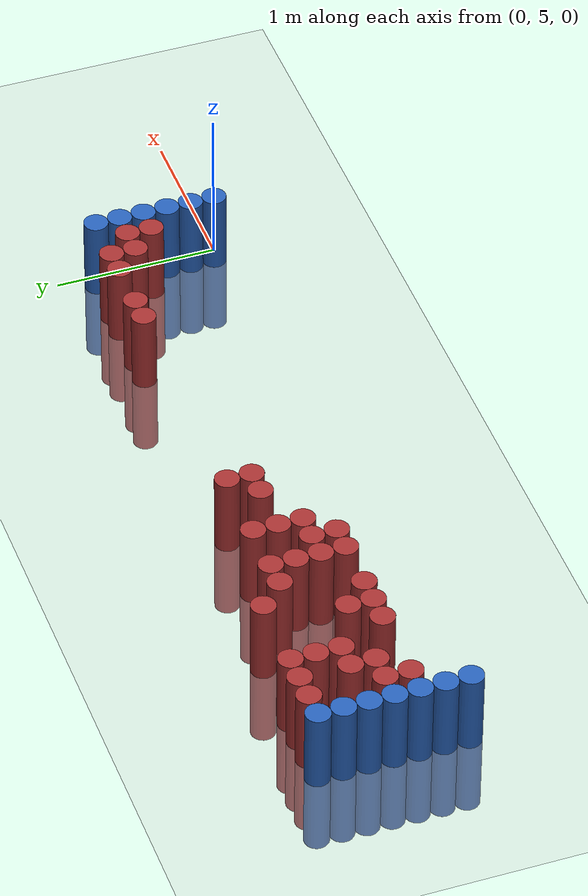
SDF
<sdf version="1.6">
 <world name="default">
  <model name="ground_plane">
   <static>1</static>
   <link name="link">
    <collision name="collision">
     <geometry><plane><normal>0 0 1</normal><size>100 100</size></plane></geometry>
     <surface><friction><ode><mu>100</mu><mu2>50</mu2></ode></friction></surface>
    </collision>
    <visual name="visual">
     <cast_shadows>0</cast_shadows>
     <geometry><plane><normal>0 0 1</normal><size>100 100</size></plane></geometry>
     <material>
      <script><uri>file://media/materials/scripts/gazebo.material</uri><name>Gazebo/Grey</name></script>
     </material>
    </visual>
   </link>
  </model>
  <model name="unit_cylinder_94">
   <static>1</static>
   <pose>-0.075000 5.025000 0.000000 0.000000 0.000000 0.000000</pose>
   <link name="link">
    <inertial>
     <mass>1</mass>
     <inertia><ixx>0.145833</ixx><ixy>0</ixy><ixz>0</ixz><iyy>0.145833</iyy><iyz>0</iyz><izz>0.125</izz></inertia>
    </inertial>
    <collision name="collision">
     <geometry><cylinder><radius>0.075000</radius><length>1</length></cylinder></geometry>
    </collision>
    <visual name="visual">
     <geometry><cylinder><radius>0.075000</radius><length>1</length></cylinder></geometry>
     <material>
      <ambient>0.152000 0.379000 0.720000 1</ambient>
      <diffuse>0.152000 0.379000 0.720000 1</diffuse>
     </material>
     <material>
      <script><name>Gazebo/Grey</name><uri>file://media/materials/scripts/gazebo.material</uri></script>
     </material>
    </visual>
   </link>
  </model>
  <model name="unit_cylinder_95">
   <static>1</static>
   <pose>-4.425000 5.025000 0.000000 0.000000 0.000000 0.000000</pose>
   <link name="link">
    <inertial>
     <mass>1</mass>
     <inertia><ixx>0.145833</ixx><ixy>0</ixy><ixz>0</ixz><iyy>0.145833</iyy><iyz>0</iyz><izz>0.125</izz></inertia>
    </inertial>
    <collision name="collision">
     <geometry><cylinder><radius>0.075000</radius><length>1</length></cylinder></geometry>
    </collision>
    <visual name="visual">
     <geometry><cylinder><radius>0.075000</radius><length>1</length></cylinder></geometry>
     <material>
      <ambient>0.152000 0.379000 0.720000 1</ambient>
      <diffuse>0.152000 0.379000 0.720000 1</diffuse>
     </material>
     <material>
      <script><name>Gazebo/Grey</name><uri>file://media/materials/scripts/gazebo.material</uri></script>
     </material>
    </visual>
   </link>
  </model>
  <model name="unit_cylinder_96">
   <static>1</static>
   <pose>-4.425000 5.175000 0.000000 0.000000 0.000000 0.000000</pose>
   <link name="link">
    <inertial>
     <mass>1</mass>
     <inertia><ixx>0.145833</ixx><ixy>0</ixy><ixz>0</ixz><iyy>0.145833</iyy><iyz>0</iyz><izz>0.125</izz></inertia>
    </inertial>
    <collision name="collision">
     <geometry><cylinder><radius>0.075000</radius><length>1</length></cylinder></geometry>
    </collision>
    <visual name="visual">
     <geometry><cylinder><radius>0.075000</radius><length>1</length></cylinder></geometry>
     <material>
      <ambient>0.152000 0.379000 0.720000 1</ambient>
      <diffuse>0.152000 0.379000 0.720000 1</diffuse>
     </material>
     <material>
      <script><name>Gazebo/Grey</name><uri>file://media/materials/scripts/gazebo.material</uri></script>
     </material>
    </visual>
   </link>
  </model>
  <model name="unit_cylinder_97">
   <static>1</static>
   <pose>-4.425000 5.325000 0.000000 0.000000 0.000000 0.000000</pose>
   <link name="link">
    <inertial>
     <mass>1</mass>
     <inertia><ixx>0.145833</ixx><ixy>0</ixy><ixz>0</ixz><iyy>0.145833</iyy><iyz>0</iyz><izz>0.125</izz></inertia>
    </inertial>
    <collision name="collision">
     <geometry><cylinder><radius>0.075000</radius><length>1</length></cylinder></geometry>
    </collision>
    <visual name="visual">
     <geometry><cylinder><radius>0.075000</radius><length>1</length></cylinder></geometry>
     <material>
      <ambient>0.152000 0.379000 0.720000 1</ambient>
      <diffuse>0.152000 0.379000 0.720000 1</diffuse>
     </material>
     <material>
      <script><name>Gazebo/Grey</name><uri>file://media/materials/scripts/gazebo.material</uri></script>
     </material>
    </visual>
   </link>
  </model>
  <model name="unit_cylinder_98">
   <static>1</static>
   <pose>-4.425000 5.475000 0.000000 0.000000 0.000000 0.000000</pose>
   <link name="link">
    <inertial>
     <mass>1</mass>
     <inertia><ixx>0.145833</ixx><ixy>0</ixy><ixz>0</ixz><iyy>0.145833</iyy><iyz>0</iyz><izz>0.125</izz></inertia>
    </inertial>
    <collision name="collision">
     <geometry><cylinder><radius>0.075000</radius><length>1</length></cylinder></geometry>
    </collision>
    <visual name="visual">
     <geometry><cylinder><radius>0.075000</radius><length>1</length></cylinder></geometry>
     <material>
      <ambient>0.152000 0.379000 0.720000 1</ambient>
      <diffuse>0.152000 0.379000 0.720000 1</diffuse>
     </material>
     <material>
      <script><name>Gazebo/Grey</name><uri>file://media/materials/scripts/gazebo.material</uri></script>
     </material>
    </visual>
   </link>
  </model>
  <model name="unit_cylinder_99">
   <static>1</static>
   <pose>-4.425000 5.625000 0.000000 0.000000 0.000000 0.000000</pose>
   <link name="link">
    <inertial>
     <mass>1</mass>
     <inertia><ixx>0.145833</ixx><ixy>0</ixy><ixz>0</ixz><iyy>0.145833</iyy><iyz>0</iyz><izz>0.125</izz></inertia>
    </inertial>
    <collision name="collision">
     <geometry><cylinder><radius>0.075000</radius><length>1</length></cylinder></geometry>
    </collision>
    <visual name="visual">
     <geometry><cylinder><radius>0.075000</radius><length>1</length></cylinder></geometry>
     <material>
      <ambient>0.152000 0.379000 0.720000 1</ambient>
      <diffuse>0.152000 0.379000 0.720000 1</diffuse>
     </material>
     <material>
      <script><name>Gazebo/Grey</name><uri>file://media/materials/scripts/gazebo.material</uri></script>
     </material>
    </visual>
   </link>
  </model>
  <model name="unit_cylinder_100">
   <static>1</static>
   <pose>-4.425000 5.775000 0.000000 0.000000 0.000000 0.000000</pose>
   <link name="link">
    <inertial>
     <mass>1</mass>
     <inertia><ixx>0.145833</ixx><ixy>0</ixy><ixz>0</ixz><iyy>0.145833</iyy><iyz>0</iyz><izz>0.125</izz></inertia>
    </inertial>
    <collision name="collision">
     <geometry><cylinder><radius>0.075000</radius><length>1</length></cylinder></geometry>
    </collision>
    <visual name="visual">
     <geometry><cylinder><radius>0.075000</radius><length>1</length></cylinder></geometry>
     <material>
      <ambient>0.152000 0.379000 0.720000 1</ambient>
      <diffuse>0.152000 0.379000 0.720000 1</diffuse>
     </material>
     <material>
      <script><name>Gazebo/Grey</name><uri>file://media/materials/scripts/gazebo.material</uri></script>
     </material>
    </visual>
   </link>
  </model>
  <model name="unit_cylinder_101">
   <static>1</static>
   <pose>-4.425000 5.925000 0.000000 0.000000 0.000000 0.000000</pose>
   <link name="link">
    <inertial>
     <mass>1</mass>
     <inertia><ixx>0.145833</ixx><ixy>0</ixy><ixz>0</ixz><iyy>0.145833</iyy><iyz>0</iyz><izz>0.125</izz></inertia>
    </inertial>
    <collision name="collision">
     <geometry><cylinder><radius>0.075000</radius><length>1</length></cylinder></geometry>
    </collision>
    <visual name="visual">
     <geometry><cylinder><radius>0.075000</radius><length>1</length></cylinder></geometry>
     <material>
      <ambient>0.152000 0.379000 0.720000 1</ambient>
      <diffuse>0.152000 0.379000 0.720000 1</diffuse>
     </material>
     <material>
      <script><name>Gazebo/Grey</name><uri>file://media/materials/scripts/gazebo.material</uri></script>
     </material>
    </visual>
   </link>
  </model>
  <model name="unit_cylinder_126">
   <static>1</static>
   <pose>-4.275000 5.325000 0.000000 0.000000 0.000000 0.000000</pose>
   <link name="link">
    <inertial>
     <mass>1</mass>
     <inertia><ixx>0.145833</ixx><ixy>0</ixy><ixz>0</ixz><iyy>0.145833</iyy><iyz>0</iyz><izz>0.125</izz></inertia>
    </inertial>
    <collision name="collision">
     <geometry><cylinder><radius>0.075000</radius><length>1</length></cylinder></geometry>
    </collision>
    <visual name="visual">
     <geometry><cylinder><radius>0.075000</radius><length>1</length></cylinder></geometry>
     <material>
      <ambient>0.648000 0.192000 0.192000 1</ambient>
      <diffuse>0.648000 0.192000 0.192000 1</diffuse>
     </material>
     <material>
      <script><name>Gazebo/Grey</name><uri>file://media/materials/scripts/gazebo.material</uri></script>
     </material>
    </visual>
   </link>
  </model>
  <model name="unit_cylinder_127">
   <static>1</static>
   <pose>-4.275000 5.475000 0.000000 0.000000 0.000000 0.000000</pose>
   <link name="link">
    <inertial>
     <mass>1</mass>
     <inertia><ixx>0.145833</ixx><ixy>0</ixy><ixz>0</ixz><iyy>0.145833</iyy><iyz>0</iyz><izz>0.125</izz></inertia>
    </inertial>
    <collision name="collision">
     <geometry><cylinder><radius>0.075000</radius><length>1</length></cylinder></geometry>
    </collision>
    <visual name="visual">
     <geometry><cylinder><radius>0.075000</radius><length>1</length></cylinder></geometry>
     <material>
      <ambient>0.648000 0.192000 0.192000 1</ambient>
      <diffuse>0.648000 0.192000 0.192000 1</diffuse>
     </material>
     <material>
      <script><name>Gazebo/Grey</name><uri>file://media/materials/scripts/gazebo.material</uri></script>
     </material>
    </visual>
   </link>
  </model>
  <model name="unit_cylinder_128">
   <static>1</static>
   <pose>-4.275000 5.925000 0.000000 0.000000 0.000000 0.000000</pose>
   <link name="link">
    <inertial>
     <mass>1</mass>
     <inertia><ixx>0.145833</ixx><ixy>0</ixy><ixz>0</ixz><iyy>0.145833</iyy><iyz>0</iyz><izz>0.125</izz></inertia>
    </inertial>
    <collision name="collision">
     <geometry><cylinder><radius>0.075000</radius><length>1</length></cylinder></geometry>
    </collision>
    <visual name="visual">
     <geometry><cylinder><radius>0.075000</radius><length>1</length></cylinder></geometry>
     <material>
      <ambient>0.648000 0.192000 0.192000 1</ambient>
      <diffuse>0.648000 0.192000 0.192000 1</diffuse>
     </material>
     <material>
      <script><name>Gazebo/Grey</name><uri>file://media/materials/scripts/gazebo.material</uri></script>
     </material>
    </visual>
   </link>
  </model>
  <model name="unit_cylinder_145">
   <static>1</static>
   <pose>-4.125000 5.475000 0.000000 0.000000 0.000000 0.000000</pose>
   <link name="link">
    <inertial>
     <mass>1</mass>
     <inertia><ixx>0.145833</ixx><ixy>0</ixy><ixz>0</ixz><iyy>0.145833</iyy><iyz>0</iyz><izz>0.125</izz></inertia>
    </inertial>
    <collision name="collision">
     <geometry><cylinder><radius>0.075000</radius><length>1</length></cylinder></geometry>
    </collision>
    <visual name="visual">
     <geometry><cylinder><radius>0.075000</radius><length>1</length></cylinder></geometry>
     <material>
      <ambient>0.648000 0.192000 0.192000 1</ambient>
      <diffuse>0.648000 0.192000 0.192000 1</diffuse>
     </material>
     <material>
      <script><name>Gazebo/Grey</name><uri>file://media/materials/scripts/gazebo.material</uri></script>
     </material>
    </visual>
   </link>
  </model>
  <model name="unit_cylinder_146">
   <static>1</static>
   <pose>-4.125000 5.625000 0.000000 0.000000 0.000000 0.000000</pose>
   <link name="link">
    <inertial>
     <mass>1</mass>
     <inertia><ixx>0.145833</ixx><ixy>0</ixy><ixz>0</ixz><iyy>0.145833</iyy><iyz>0</iyz><izz>0.125</izz></inertia>
    </inertial>
    <collision name="collision">
     <geometry><cylinder><radius>0.075000</radius><length>1</length></cylinder></geometry>
    </collision>
    <visual name="visual">
     <geometry><cylinder><radius>0.075000</radius><length>1</length></cylinder></geometry>
     <material>
      <ambient>0.648000 0.192000 0.192000 1</ambient>
      <diffuse>0.648000 0.192000 0.192000 1</diffuse>
     </material>
     <material>
      <script><name>Gazebo/Grey</name><uri>file://media/materials/scripts/gazebo.material</uri></script>
     </material>
    </visual>
   </link>
  </model>
  <model name="unit_cylinder_147">
   <static>1</static>
   <pose>-4.125000 5.925000 0.000000 0.000000 0.000000 0.000000</pose>
   <link name="link">
    <inertial>
     <mass>1</mass>
     <inertia><ixx>0.145833</ixx><ixy>0</ixy><ixz>0</ixz><iyy>0.145833</iyy><iyz>0</iyz><izz>0.125</izz></inertia>
    </inertial>
    <collision name="collision">
     <geometry><cylinder><radius>0.075000</radius><length>1</length></cylinder></geometry>
    </collision>
    <visual name="visual">
     <geometry><cylinder><radius>0.075000</radius><length>1</length></cylinder></geometry>
     <material>
      <ambient>0.648000 0.192000 0.192000 1</ambient>
      <diffuse>0.648000 0.192000 0.192000 1</diffuse>
     </material>
     <material>
      <script><name>Gazebo/Grey</name><uri>file://media/materials/scripts/gazebo.material</uri></script>
     </material>
    </visual>
   </link>
  </model>
  <model name="unit_cylinder_159">
   <static>1</static>
   <pose>-3.975000 5.625000 0.000000 0.000000 0.000000 0.000000</pose>
   <link name="link">
    <inertial>
     <mass>1</mass>
     <inertia><ixx>0.145833</ixx><ixy>0</ixy><ixz>0</ixz><iyy>0.145833</iyy><iyz>0</iyz><izz>0.125</izz></inertia>
    </inertial>
    <collision name="collision">
     <geometry><cylinder><radius>0.075000</radius><length>1</length></cylinder></geometry>
    </collision>
    <visual name="visual">
     <geometry><cylinder><radius>0.075000</radius><length>1</length></cylinder></geometry>
     <material>
      <ambient>0.648000 0.192000 0.192000 1</ambient>
      <diffuse>0.648000 0.192000 0.192000 1</diffuse>
     </material>
     <material>
      <script><name>Gazebo/Grey</name><uri>file://media/materials/scripts/gazebo.material</uri></script>
     </material>
    </visual>
   </link>
  </model>
  <model name="unit_cylinder_160">
   <static>1</static>
   <pose>-3.975000 5.775000 0.000000 0.000000 0.000000 0.000000</pose>
   <link name="link">
    <inertial>
     <mass>1</mass>
     <inertia><ixx>0.145833</ixx><ixy>0</ixy><ixz>0</ixz><iyy>0.145833</iyy><iyz>0</iyz><izz>0.125</izz></inertia>
    </inertial>
    <collision name="collision">
     <geometry><cylinder><radius>0.075000</radius><length>1</length></cylinder></geometry>
    </collision>
    <visual name="visual">
     <geometry><cylinder><radius>0.075000</radius><length>1</length></cylinder></geometry>
     <material>
      <ambient>0.648000 0.192000 0.192000 1</ambient>
      <diffuse>0.648000 0.192000 0.192000 1</diffuse>
     </material>
     <material>
      <script><name>Gazebo/Grey</name><uri>file://media/materials/scripts/gazebo.material</uri></script>
     </material>
    </visual>
   </link>
  </model>
  <model name="unit_cylinder_161">
   <static>1</static>
   <pose>-3.975000 5.925000 0.000000 0.000000 0.000000 0.000000</pose>
   <link name="link">
    <inertial>
     <mass>1</mass>
     <inertia><ixx>0.145833</ixx><ixy>0</ixy><ixz>0</ixz><iyy>0.145833</iyy><iyz>0</iyz><izz>0.125</izz></inertia>
    </inertial>
    <collision name="collision">
     <geometry><cylinder><radius>0.075000</radius><length>1</length></cylinder></geometry>
    </collision>
    <visual name="visual">
     <geometry><cylinder><radius>0.075000</radius><length>1</length></cylinder></geometry>
     <material>
      <ambient>0.648000 0.192000 0.192000 1</ambient>
      <diffuse>0.648000 0.192000 0.192000 1</diffuse>
     </material>
     <material>
      <script><name>Gazebo/Grey</name><uri>file://media/materials/scripts/gazebo.material</uri></script>
     </material>
    </visual>
   </link>
  </model>
  <model name="unit_cylinder_165">
   <static>1</static>
   <pose>-3.825000 5.325000 0.000000 0.000000 0.000000 0.000000</pose>
   <link name="link">
    <inertial>
     <mass>1</mass>
     <inertia><ixx>0.145833</ixx><ixy>0</ixy><ixz>0</ixz><iyy>0.145833</iyy><iyz>0</iyz><izz>0.125</izz></inertia>
    </inertial>
    <collision name="collision">
     <geometry><cylinder><radius>0.075000</radius><length>1</length></cylinder></geometry>
    </collision>
    <visual name="visual">
     <geometry><cylinder><radius>0.075000</radius><length>1</length></cylinder></geometry>
     <material>
      <ambient>0.648000 0.192000 0.192000 1</ambient>
      <diffuse>0.648000 0.192000 0.192000 1</diffuse>
     </material>
     <material>
      <script><name>Gazebo/Grey</name><uri>file://media/materials/scripts/gazebo.material</uri></script>
     </material>
    </visual>
   </link>
  </model>
  <model name="unit_cylinder_170">
   <static>1</static>
   <pose>-3.675000 5.325000 0.000000 0.000000 0.000000 0.000000</pose>
   <link name="link">
    <inertial>
     <mass>1</mass>
     <inertia><ixx>0.145833</ixx><ixy>0</ixy><ixz>0</ixz><iyy>0.145833</iyy><iyz>0</iyz><izz>0.125</izz></inertia>
    </inertial>
    <collision name="collision">
     <geometry><cylinder><radius>0.075000</radius><length>1</length></cylinder></geometry>
    </collision>
    <visual name="visual">
     <geometry><cylinder><radius>0.075000</radius><length>1</length></cylinder></geometry>
     <material>
      <ambient>0.648000 0.192000 0.192000 1</ambient>
      <diffuse>0.648000 0.192000 0.192000 1</diffuse>
     </material>
     <material>
      <script><name>Gazebo/Grey</name><uri>file://media/materials/scripts/gazebo.material</uri></script>
     </material>
    </visual>
   </link>
  </model>
  <model name="unit_cylinder_171">
   <static>1</static>
   <pose>-3.675000 5.475000 0.000000 0.000000 0.000000 0.000000</pose>
   <link name="link">
    <inertial>
     <mass>1</mass>
     <inertia><ixx>0.145833</ixx><ixy>0</ixy><ixz>0</ixz><iyy>0.145833</iyy><iyz>0</iyz><izz>0.125</izz></inertia>
    </inertial>
    <collision name="collision">
     <geometry><cylinder><radius>0.075000</radius><length>1</length></cylinder></geometry>
    </collision>
    <visual name="visual">
     <geometry><cylinder><radius>0.075000</radius><length>1</length></cylinder></geometry>
     <material>
      <ambient>0.648000 0.192000 0.192000 1</ambient>
      <diffuse>0.648000 0.192000 0.192000 1</diffuse>
     </material>
     <material>
      <script><name>Gazebo/Grey</name><uri>file://media/materials/scripts/gazebo.material</uri></script>
     </material>
    </visual>
   </link>
  </model>
  <model name="unit_cylinder_176">
   <static>1</static>
   <pose>-3.525000 5.325000 0.000000 0.000000 0.000000 0.000000</pose>
   <link name="link">
    <inertial>
     <mass>1</mass>
     <inertia><ixx>0.145833</ixx><ixy>0</ixy><ixz>0</ixz><iyy>0.145833</iyy><iyz>0</iyz><izz>0.125</izz></inertia>
    </inertial>
    <collision name="collision">
     <geometry><cylinder><radius>0.075000</radius><length>1</length></cylinder></geometry>
    </collision>
    <visual name="visual">
     <geometry><cylinder><radius>0.075000</radius><length>1</length></cylinder></geometry>
     <material>
      <ambient>0.648000 0.192000 0.192000 1</ambient>
      <diffuse>0.648000 0.192000 0.192000 1</diffuse>
     </material>
     <material>
      <script><name>Gazebo/Grey</name><uri>file://media/materials/scripts/gazebo.material</uri></script>
     </material>
    </visual>
   </link>
  </model>
  <model name="unit_cylinder_177">
   <static>1</static>
   <pose>-3.525000 5.925000 0.000000 0.000000 0.000000 0.000000</pose>
   <link name="link">
    <inertial>
     <mass>1</mass>
     <inertia><ixx>0.145833</ixx><ixy>0</ixy><ixz>0</ixz><iyy>0.145833</iyy><iyz>0</iyz><izz>0.125</izz></inertia>
    </inertial>
    <collision name="collision">
     <geometry><cylinder><radius>0.075000</radius><length>1</length></cylinder></geometry>
    </collision>
    <visual name="visual">
     <geometry><cylinder><radius>0.075000</radius><length>1</length></cylinder></geometry>
     <material>
      <ambient>0.648000 0.192000 0.192000 1</ambient>
      <diffuse>0.648000 0.192000 0.192000 1</diffuse>
     </material>
     <material>
      <script><name>Gazebo/Grey</name><uri>file://media/materials/scripts/gazebo.material</uri></script>
     </material>
    </visual>
   </link>
  </model>
  <model name="unit_cylinder_182">
   <static>1</static>
   <pose>-3.375000 5.775000 0.000000 0.000000 0.000000 0.000000</pose>
   <link name="link">
    <inertial>
     <mass>1</mass>
     <inertia><ixx>0.145833</ixx><ixy>0</ixy><ixz>0</ixz><iyy>0.145833</iyy><iyz>0</iyz><izz>0.125</izz></inertia>
    </inertial>
    <collision name="collision">
     <geometry><cylinder><radius>0.075000</radius><length>1</length></cylinder></geometry>
    </collision>
    <visual name="visual">
     <geometry><cylinder><radius>0.075000</radius><length>1</length></cylinder></geometry>
     <material>
      <ambient>0.648000 0.192000 0.192000 1</ambient>
      <diffuse>0.648000 0.192000 0.192000 1</diffuse>
     </material>
     <material>
      <script><name>Gazebo/Grey</name><uri>file://media/materials/scripts/gazebo.material</uri></script>
     </material>
    </visual>
   </link>
  </model>
  <model name="unit_cylinder_186">
   <static>1</static>
   <pose>-3.225000 5.325000 0.000000 0.000000 0.000000 0.000000</pose>
   <link name="link">
    <inertial>
     <mass>1</mass>
     <inertia><ixx>0.145833</ixx><ixy>0</ixy><ixz>0</ixz><iyy>0.145833</iyy><iyz>0</iyz><izz>0.125</izz></inertia>
    </inertial>
    <collision name="collision">
     <geometry><cylinder><radius>0.075000</radius><length>1</length></cylinder></geometry>
    </collision>
    <visual name="visual">
     <geometry><cylinder><radius>0.075000</radius><length>1</length></cylinder></geometry>
     <material>
      <ambient>0.648000 0.192000 0.192000 1</ambient>
      <diffuse>0.648000 0.192000 0.192000 1</diffuse>
     </material>
     <material>
      <script><name>Gazebo/Grey</name><uri>file://media/materials/scripts/gazebo.material</uri></script>
     </material>
    </visual>
   </link>
  </model>
  <model name="unit_cylinder_187">
   <static>1</static>
   <pose>-3.225000 5.475000 0.000000 0.000000 0.000000 0.000000</pose>
   <link name="link">
    <inertial>
     <mass>1</mass>
     <inertia><ixx>0.145833</ixx><ixy>0</ixy><ixz>0</ixz><iyy>0.145833</iyy><iyz>0</iyz><izz>0.125</izz></inertia>
    </inertial>
    <collision name="collision">
     <geometry><cylinder><radius>0.075000</radius><length>1</length></cylinder></geometry>
    </collision>
    <visual name="visual">
     <geometry><cylinder><radius>0.075000</radius><length>1</length></cylinder></geometry>
     <material>
      <ambient>0.648000 0.192000 0.192000 1</ambient>
      <diffuse>0.648000 0.192000 0.192000 1</diffuse>
     </material>
     <material>
      <script><name>Gazebo/Grey</name><uri>file://media/materials/scripts/gazebo.material</uri></script>
     </material>
    </visual>
   </link>
  </model>
  <model name="unit_cylinder_188">
   <static>1</static>
   <pose>-3.225000 5.625000 0.000000 0.000000 0.000000 0.000000</pose>
   <link name="link">
    <inertial>
     <mass>1</mass>
     <inertia><ixx>0.145833</ixx><ixy>0</ixy><ixz>0</ixz><iyy>0.145833</iyy><iyz>0</iyz><izz>0.125</izz></inertia>
    </inertial>
    <collision name="collision">
     <geometry><cylinder><radius>0.075000</radius><length>1</length></cylinder></geometry>
    </collision>
    <visual name="visual">
     <geometry><cylinder><radius>0.075000</radius><length>1</length></cylinder></geometry>
     <material>
      <ambient>0.648000 0.192000 0.192000 1</ambient>
      <diffuse>0.648000 0.192000 0.192000 1</diffuse>
     </material>
     <material>
      <script><name>Gazebo/Grey</name><uri>file://media/materials/scripts/gazebo.material</uri></script>
     </material>
    </visual>
   </link>
  </model>
  <model name="unit_cylinder_189">
   <static>1</static>
   <pose>-3.225000 5.775000 0.000000 0.000000 0.000000 0.000000</pose>
   <link name="link">
    <inertial>
     <mass>1</mass>
     <inertia><ixx>0.145833</ixx><ixy>0</ixy><ixz>0</ixz><iyy>0.145833</iyy><iyz>0</iyz><izz>0.125</izz></inertia>
    </inertial>
    <collision name="collision">
     <geometry><cylinder><radius>0.075000</radius><length>1</length></cylinder></geometry>
    </collision>
    <visual name="visual">
     <geometry><cylinder><radius>0.075000</radius><length>1</length></cylinder></geometry>
     <material>
      <ambient>0.648000 0.192000 0.192000 1</ambient>
      <diffuse>0.648000 0.192000 0.192000 1</diffuse>
     </material>
     <material>
      <script><name>Gazebo/Grey</name><uri>file://media/materials/scripts/gazebo.material</uri></script>
     </material>
    </visual>
   </link>
  </model>
  <model name="unit_cylinder_193">
   <static>1</static>
   <pose>-3.075000 5.325000 0.000000 0.000000 0.000000 0.000000</pose>
   <link name="link">
    <inertial>
     <mass>1</mass>
     <inertia><ixx>0.145833</ixx><ixy>0</ixy><ixz>0</ixz><iyy>0.145833</iyy><iyz>0</iyz><izz>0.125</izz></inertia>
    </inertial>
    <collision name="collision">
     <geometry><cylinder><radius>0.075000</radius><length>1</length></cylinder></geometry>
    </collision>
    <visual name="visual">
     <geometry><cylinder><radius>0.075000</radius><length>1</length></cylinder></geometry>
     <material>
      <ambient>0.648000 0.192000 0.192000 1</ambient>
      <diffuse>0.648000 0.192000 0.192000 1</diffuse>
     </material>
     <material>
      <script><name>Gazebo/Grey</name><uri>file://media/materials/scripts/gazebo.material</uri></script>
     </material>
    </visual>
   </link>
  </model>
  <model name="unit_cylinder_194">
   <static>1</static>
   <pose>-3.075000 5.475000 0.000000 0.000000 0.000000 0.000000</pose>
   <link name="link">
    <inertial>
     <mass>1</mass>
     <inertia><ixx>0.145833</ixx><ixy>0</ixy><ixz>0</ixz><iyy>0.145833</iyy><iyz>0</iyz><izz>0.125</izz></inertia>
    </inertial>
    <collision name="collision">
     <geometry><cylinder><radius>0.075000</radius><length>1</length></cylinder></geometry>
    </collision>
    <visual name="visual">
     <geometry><cylinder><radius>0.075000</radius><length>1</length></cylinder></geometry>
     <material>
      <ambient>0.648000 0.192000 0.192000 1</ambient>
      <diffuse>0.648000 0.192000 0.192000 1</diffuse>
     </material>
     <material>
      <script><name>Gazebo/Grey</name><uri>file://media/materials/scripts/gazebo.material</uri></script>
     </material>
    </visual>
   </link>
  </model>
  <model name="unit_cylinder_198">
   <static>1</static>
   <pose>-2.925000 5.475000 0.000000 0.000000 0.000000 0.000000</pose>
   <link name="link">
    <inertial>
     <mass>1</mass>
     <inertia><ixx>0.145833</ixx><ixy>0</ixy><ixz>0</ixz><iyy>0.145833</iyy><iyz>0</iyz><izz>0.125</izz></inertia>
    </inertial>
    <collision name="collision">
     <geometry><cylinder><radius>0.075000</radius><length>1</length></cylinder></geometry>
    </collision>
    <visual name="visual">
     <geometry><cylinder><radius>0.075000</radius><length>1</length></cylinder></geometry>
     <material>
      <ambient>0.648000 0.192000 0.192000 1</ambient>
      <diffuse>0.648000 0.192000 0.192000 1</diffuse>
     </material>
     <material>
      <script><name>Gazebo/Grey</name><uri>file://media/materials/scripts/gazebo.material</uri></script>
     </material>
    </visual>
   </link>
  </model>
  <model name="unit_cylinder_199">
   <static>1</static>
   <pose>-2.925000 5.625000 0.000000 0.000000 0.000000 0.000000</pose>
   <link name="link">
    <inertial>
     <mass>1</mass>
     <inertia><ixx>0.145833</ixx><ixy>0</ixy><ixz>0</ixz><iyy>0.145833</iyy><iyz>0</iyz><izz>0.125</izz></inertia>
    </inertial>
    <collision name="collision">
     <geometry><cylinder><radius>0.075000</radius><length>1</length></cylinder></geometry>
    </collision>
    <visual name="visual">
     <geometry><cylinder><radius>0.075000</radius><length>1</length></cylinder></geometry>
     <material>
      <ambient>0.648000 0.192000 0.192000 1</ambient>
      <diffuse>0.648000 0.192000 0.192000 1</diffuse>
     </material>
     <material>
      <script><name>Gazebo/Grey</name><uri>file://media/materials/scripts/gazebo.material</uri></script>
     </material>
    </visual>
   </link>
  </model>
  <model name="unit_cylinder_200">
   <static>1</static>
   <pose>-2.925000 5.775000 0.000000 0.000000 0.000000 0.000000</pose>
   <link name="link">
    <inertial>
     <mass>1</mass>
     <inertia><ixx>0.145833</ixx><ixy>0</ixy><ixz>0</ixz><iyy>0.145833</iyy><iyz>0</iyz><izz>0.125</izz></inertia>
    </inertial>
    <collision name="collision">
     <geometry><cylinder><radius>0.075000</radius><length>1</length></cylinder></geometry>
    </collision>
    <visual name="visual">
     <geometry><cylinder><radius>0.075000</radius><length>1</length></cylinder></geometry>
     <material>
      <ambient>0.648000 0.192000 0.192000 1</ambient>
      <diffuse>0.648000 0.192000 0.192000 1</diffuse>
     </material>
     <material>
      <script><name>Gazebo/Grey</name><uri>file://media/materials/scripts/gazebo.material</uri></script>
     </material>
    </visual>
   </link>
  </model>
  <model name="unit_cylinder_213">
   <static>1</static>
   <pose>-2.625000 5.625000 0.000000 0.000000 0.000000 0.000000</pose>
   <link name="link">
    <inertial>
     <mass>1</mass>
     <inertia><ixx>0.145833</ixx><ixy>0</ixy><ixz>0</ixz><iyy>0.145833</iyy><iyz>0</iyz><izz>0.125</izz></inertia>
    </inertial>
    <collision name="collision">
     <geometry><cylinder><radius>0.075000</radius><length>1</length></cylinder></geometry>
    </collision>
    <visual name="visual">
     <geometry><cylinder><radius>0.075000</radius><length>1</length></cylinder></geometry>
     <material>
      <ambient>0.648000 0.192000 0.192000 1</ambient>
      <diffuse>0.648000 0.192000 0.192000 1</diffuse>
     </material>
     <material>
      <script><name>Gazebo/Grey</name><uri>file://media/materials/scripts/gazebo.material</uri></script>
     </material>
    </visual>
   </link>
  </model>
  <model name="unit_cylinder_220">
   <static>1</static>
   <pose>-2.475000 5.625000 0.000000 0.000000 0.000000 0.000000</pose>
   <link name="link">
    <inertial>
     <mass>1</mass>
     <inertia><ixx>0.145833</ixx><ixy>0</ixy><ixz>0</ixz><iyy>0.145833</iyy><iyz>0</iyz><izz>0.125</izz></inertia>
    </inertial>
    <collision name="collision">
     <geometry><cylinder><radius>0.075000</radius><length>1</length></cylinder></geometry>
    </collision>
    <visual name="visual">
     <geometry><cylinder><radius>0.075000</radius><length>1</length></cylinder></geometry>
     <material>
      <ambient>0.648000 0.192000 0.192000 1</ambient>
      <diffuse>0.648000 0.192000 0.192000 1</diffuse>
     </material>
     <material>
      <script><name>Gazebo/Grey</name><uri>file://media/materials/scripts/gazebo.material</uri></script>
     </material>
    </visual>
   </link>
  </model>
  <model name="unit_cylinder_221">
   <static>1</static>
   <pose>-2.475000 5.775000 0.000000 0.000000 0.000000 0.000000</pose>
   <link name="link">
    <inertial>
     <mass>1</mass>
     <inertia><ixx>0.145833</ixx><ixy>0</ixy><ixz>0</ixz><iyy>0.145833</iyy><iyz>0</iyz><izz>0.125</izz></inertia>
    </inertial>
    <collision name="collision">
     <geometry><cylinder><radius>0.075000</radius><length>1</length></cylinder></geometry>
    </collision>
    <visual name="visual">
     <geometry><cylinder><radius>0.075000</radius><length>1</length></cylinder></geometry>
     <material>
      <ambient>0.648000 0.192000 0.192000 1</ambient>
      <diffuse>0.648000 0.192000 0.192000 1</diffuse>
     </material>
     <material>
      <script><name>Gazebo/Grey</name><uri>file://media/materials/scripts/gazebo.material</uri></script>
     </material>
    </visual>
   </link>
  </model>
  <model name="unit_cylinder_253">
   <static>1</static>
   <pose>-0.975000 5.775000 0.000000 0.000000 0.000000 0.000000</pose>
   <link name="link">
    <inertial>
     <mass>1</mass>
     <inertia><ixx>0.145833</ixx><ixy>0</ixy><ixz>0</ixz><iyy>0.145833</iyy><iyz>0</iyz><izz>0.125</izz></inertia>
    </inertial>
    <collision name="collision">
     <geometry><cylinder><radius>0.075000</radius><length>1</length></cylinder></geometry>
    </collision>
    <visual name="visual">
     <geometry><cylinder><radius>0.075000</radius><length>1</length></cylinder></geometry>
     <material>
      <ambient>0.648000 0.192000 0.192000 1</ambient>
      <diffuse>0.648000 0.192000 0.192000 1</diffuse>
     </material>
     <material>
      <script><name>Gazebo/Grey</name><uri>file://media/materials/scripts/gazebo.material</uri></script>
     </material>
    </visual>
   </link>
  </model>
  <model name="unit_cylinder_256">
   <static>1</static>
   <pose>-0.825000 5.775000 0.000000 0.000000 0.000000 0.000000</pose>
   <link name="link">
    <inertial>
     <mass>1</mass>
     <inertia><ixx>0.145833</ixx><ixy>0</ixy><ixz>0</ixz><iyy>0.145833</iyy><iyz>0</iyz><izz>0.125</izz></inertia>
    </inertial>
    <collision name="collision">
     <geometry><cylinder><radius>0.075000</radius><length>1</length></cylinder></geometry>
    </collision>
    <visual name="visual">
     <geometry><cylinder><radius>0.075000</radius><length>1</length></cylinder></geometry>
     <material>
      <ambient>0.648000 0.192000 0.192000 1</ambient>
      <diffuse>0.648000 0.192000 0.192000 1</diffuse>
     </material>
     <material>
      <script><name>Gazebo/Grey</name><uri>file://media/materials/scripts/gazebo.material</uri></script>
     </material>
    </visual>
   </link>
  </model>
  <model name="unit_cylinder_263">
   <static>1</static>
   <pose>-0.525000 5.775000 0.000000 0.000000 0.000000 0.000000</pose>
   <link name="link">
    <inertial>
     <mass>1</mass>
     <inertia><ixx>0.145833</ixx><ixy>0</ixy><ixz>0</ixz><iyy>0.145833</iyy><iyz>0</iyz><izz>0.125</izz></inertia>
    </inertial>
    <collision name="collision">
     <geometry><cylinder><radius>0.075000</radius><length>1</length></cylinder></geometry>
    </collision>
    <visual name="visual">
     <geometry><cylinder><radius>0.075000</radius><length>1</length></cylinder></geometry>
     <material>
      <ambient>0.648000 0.192000 0.192000 1</ambient>
      <diffuse>0.648000 0.192000 0.192000 1</diffuse>
     </material>
     <material>
      <script><name>Gazebo/Grey</name><uri>file://media/materials/scripts/gazebo.material</uri></script>
     </material>
    </visual>
   </link>
  </model>
  <model name="unit_cylinder_273">
   <static>1</static>
   <pose>-0.375000 5.625000 0.000000 0.000000 0.000000 0.000000</pose>
   <link name="link">
    <inertial>
     <mass>1</mass>
     <inertia><ixx>0.145833</ixx><ixy>0</ixy><ixz>0</ixz><iyy>0.145833</iyy><iyz>0</iyz><izz>0.125</izz></inertia>
    </inertial>
    <collision name="collision">
     <geometry><cylinder><radius>0.075000</radius><length>1</length></cylinder></geometry>
    </collision>
    <visual name="visual">
     <geometry><cylinder><radius>0.075000</radius><length>1</length></cylinder></geometry>
     <material>
      <ambient>0.648000 0.192000 0.192000 1</ambient>
      <diffuse>0.648000 0.192000 0.192000 1</diffuse>
     </material>
     <material>
      <script><name>Gazebo/Grey</name><uri>file://media/materials/scripts/gazebo.material</uri></script>
     </material>
    </visual>
   </link>
  </model>
  <model name="unit_cylinder_274">
   <static>1</static>
   <pose>-0.375000 5.775000 0.000000 0.000000 0.000000 0.000000</pose>
   <link name="link">
    <inertial>
     <mass>1</mass>
     <inertia><ixx>0.145833</ixx><ixy>0</ixy><ixz>0</ixz><iyy>0.145833</iyy><iyz>0</iyz><izz>0.125</izz></inertia>
    </inertial>
    <collision name="collision">
     <geometry><cylinder><radius>0.075000</radius><length>1</length></cylinder></geometry>
    </collision>
    <visual name="visual">
     <geometry><cylinder><radius>0.075000</radius><length>1</length></cylinder></geometry>
     <material>
      <ambient>0.648000 0.192000 0.192000 1</ambient>
      <diffuse>0.648000 0.192000 0.192000 1</diffuse>
     </material>
     <material>
      <script><name>Gazebo/Grey</name><uri>file://media/materials/scripts/gazebo.material</uri></script>
     </material>
    </visual>
   </link>
  </model>
  <model name="unit_cylinder_286">
   <static>1</static>
   <pose>-0.225000 5.475000 0.000000 0.000000 0.000000 0.000000</pose>
   <link name="link">
    <inertial>
     <mass>1</mass>
     <inertia><ixx>0.145833</ixx><ixy>0</ixy><ixz>0</ixz><iyy>0.145833</iyy><iyz>0</iyz><izz>0.125</izz></inertia>
    </inertial>
    <collision name="collision">
     <geometry><cylinder><radius>0.075000</radius><length>1</length></cylinder></geometry>
    </collision>
    <visual name="visual">
     <geometry><cylinder><radius>0.075000</radius><length>1</length></cylinder></geometry>
     <material>
      <ambient>0.648000 0.192000 0.192000 1</ambient>
      <diffuse>0.648000 0.192000 0.192000 1</diffuse>
     </material>
     <material>
      <script><name>Gazebo/Grey</name><uri>file://media/materials/scripts/gazebo.material</uri></script>
     </material>
    </visual>
   </link>
  </model>
  <model name="unit_cylinder_287">
   <static>1</static>
   <pose>-0.225000 5.625000 0.000000 0.000000 0.000000 0.000000</pose>
   <link name="link">
    <inertial>
     <mass>1</mass>
     <inertia><ixx>0.145833</ixx><ixy>0</ixy><ixz>0</ixz><iyy>0.145833</iyy><iyz>0</iyz><izz>0.125</izz></inertia>
    </inertial>
    <collision name="collision">
     <geometry><cylinder><radius>0.075000</radius><length>1</length></cylinder></geometry>
    </collision>
    <visual name="visual">
     <geometry><cylinder><radius>0.075000</radius><length>1</length></cylinder></geometry>
     <material>
      <ambient>0.648000 0.192000 0.192000 1</ambient>
      <diffuse>0.648000 0.192000 0.192000 1</diffuse>
     </material>
     <material>
      <script><name>Gazebo/Grey</name><uri>file://media/materials/scripts/gazebo.material</uri></script>
     </material>
    </visual>
   </link>
  </model>
  <model name="unit_cylinder_299">
   <static>1</static>
   <pose>-0.075000 5.175000 0.000000 0.000000 0.000000 0.000000</pose>
   <link name="link">
    <inertial>
     <mass>1</mass>
     <inertia><ixx>0.145833</ixx><ixy>0</ixy><ixz>0</ixz><iyy>0.145833</iyy><iyz>0</iyz><izz>0.125</izz></inertia>
    </inertial>
    <collision name="collision">
     <geometry><cylinder><radius>0.075000</radius><length>1</length></cylinder></geometry>
    </collision>
    <visual name="visual">
     <geometry><cylinder><radius>0.075000</radius><length>1</length></cylinder></geometry>
     <material>
      <ambient>0.152000 0.379000 0.720000 1</ambient>
      <diffuse>0.152000 0.379000 0.720000 1</diffuse>
     </material>
     <material>
      <script><name>Gazebo/Grey</name><uri>file://media/materials/scripts/gazebo.material</uri></script>
     </material>
    </visual>
   </link>
  </model>
  <model name="unit_cylinder_300">
   <static>1</static>
   <pose>-0.075000 5.325000 0.000000 0.000000 0.000000 0.000000</pose>
   <link name="link">
    <inertial>
     <mass>1</mass>
     <inertia><ixx>0.145833</ixx><ixy>0</ixy><ixz>0</ixz><iyy>0.145833</iyy><iyz>0</iyz><izz>0.125</izz></inertia>
    </inertial>
    <collision name="collision">
     <geometry><cylinder><radius>0.075000</radius><length>1</length></cylinder></geometry>
    </collision>
    <visual name="visual">
     <geometry><cylinder><radius>0.075000</radius><length>1</length></cylinder></geometry>
     <material>
      <ambient>0.152000 0.379000 0.720000 1</ambient>
      <diffuse>0.152000 0.379000 0.720000 1</diffuse>
     </material>
     <material>
      <script><name>Gazebo/Grey</name><uri>file://media/materials/scripts/gazebo.material</uri></script>
     </material>
    </visual>
   </link>
  </model>
  <model name="unit_cylinder_301">
   <static>1</static>
   <pose>-0.075000 5.475000 0.000000 0.000000 0.000000 0.000000</pose>
   <link name="link">
    <inertial>
     <mass>1</mass>
     <inertia><ixx>0.145833</ixx><ixy>0</ixy><ixz>0</ixz><iyy>0.145833</iyy><iyz>0</iyz><izz>0.125</izz></inertia>
    </inertial>
    <collision name="collision">
     <geometry><cylinder><radius>0.075000</radius><length>1</length></cylinder></geometry>
    </collision>
    <visual name="visual">
     <geometry><cylinder><radius>0.075000</radius><length>1</length></cylinder></geometry>
     <material>
      <ambient>0.152000 0.379000 0.720000 1</ambient>
      <diffuse>0.152000 0.379000 0.720000 1</diffuse>
     </material>
     <material>
      <script><name>Gazebo/Grey</name><uri>file://media/materials/scripts/gazebo.material</uri></script>
     </material>
    </visual>
   </link>
  </model>
  <model name="unit_cylinder_302">
   <static>1</static>
   <pose>-0.075000 5.625000 0.000000 0.000000 0.000000 0.000000</pose>
   <link name="link">
    <inertial>
     <mass>1</mass>
     <inertia><ixx>0.145833</ixx><ixy>0</ixy><ixz>0</ixz><iyy>0.145833</iyy><iyz>0</iyz><izz>0.125</izz></inertia>
    </inertial>
    <collision name="collision">
     <geometry><cylinder><radius>0.075000</radius><length>1</length></cylinder></geometry>
    </collision>
    <visual name="visual">
     <geometry><cylinder><radius>0.075000</radius><length>1</length></cylinder></geometry>
     <material>
      <ambient>0.152000 0.379000 0.720000 1</ambient>
      <diffuse>0.152000 0.379000 0.720000 1</diffuse>
     </material>
     <material>
      <script><name>Gazebo/Grey</name><uri>file://media/materials/scripts/gazebo.material</uri></script>
     </material>
    </visual>
   </link>
  </model>
  <model name="unit_cylinder_303">
   <static>1</static>
   <pose>-0.075000 5.775000 0.000000 0.000000 0.000000 0.000000</pose>
   <link name="link">
    <inertial>
     <mass>1</mass>
     <inertia><ixx>0.145833</ixx><ixy>0</ixy><ixz>0</ixz><iyy>0.145833</iyy><iyz>0</iyz><izz>0.125</izz></inertia>
    </inertial>
    <collision name="collision">
     <geometry><cylinder><radius>0.075000</radius><length>1</length></cylinder></geometry>
    </collision>
    <visual name="visual">
     <geometry><cylinder><radius>0.075000</radius><length>1</length></cylinder></geometry>
     <material>
      <ambient>0.152000 0.379000 0.720000 1</ambient>
      <diffuse>0.152000 0.379000 0.720000 1</diffuse>
     </material>
     <material>
      <script><name>Gazebo/Grey</name><uri>file://media/materials/scripts/gazebo.material</uri></script>
     </material>
    </visual>
   </link>
  </model>
 </world>
</sdf>
